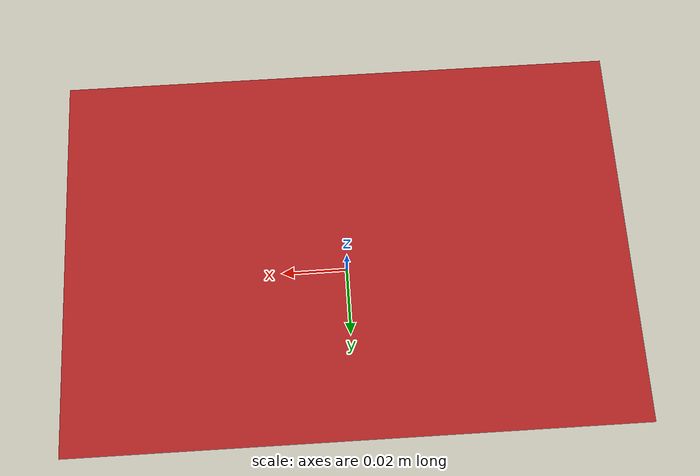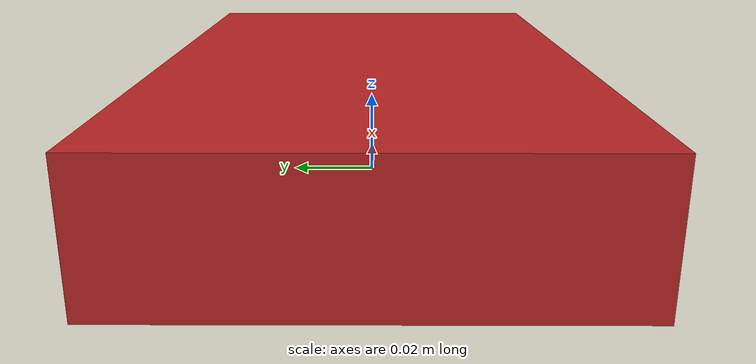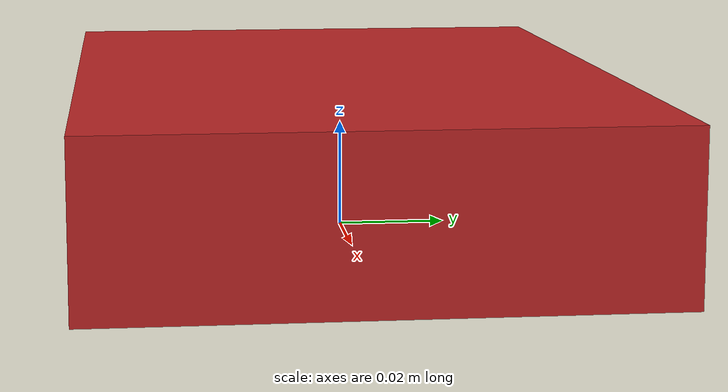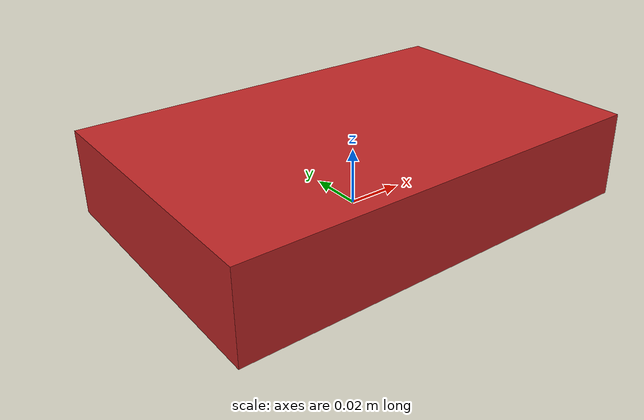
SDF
<?xml version='1.0'?>
<sdf version="1.7">
  <model name="obj_book">
    <pose>0 0 0.015 0 0 0</pose>
    <static>true</static>
    <link name="link">
      <collision name="collision">
        <geometry>
          <box>
            <size>0.15 0.10 0.03</size>
          </box>
        </geometry>
      </collision>
      <visual name="visual">
        <geometry>
          <box>
            <size>0.15 0.10 0.03</size>
          </box>
        </geometry>
        <material>
          <ambient>0.75 0.15 0.15 1</ambient>
          <diffuse>0.75 0.15 0.15 1</diffuse>
          <specular>0.03 0.03 0.03 1</specular>
          <emissive>0 0 0 1</emissive>
        </material>
      </visual>
    </link>
  </model>
</sdf>
